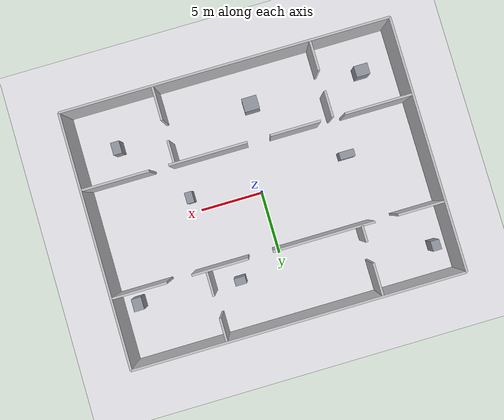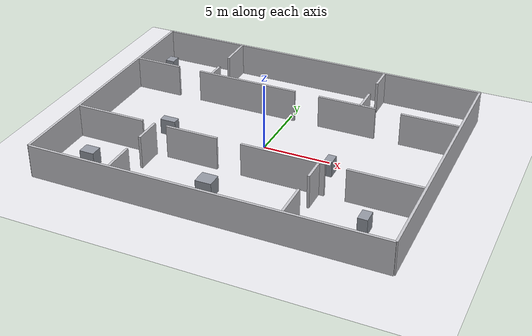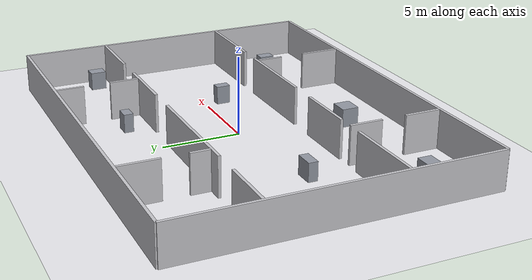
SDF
<?xml version="1.0"?>
<sdf version="1.9"><world name="new_room_world">
<plugin filename="gz-sim-physics-system" name="gz::sim::systems::Physics"/><plugin filename="gz-sim-user-commands-system" name="gz::sim::systems::UserCommands"/><plugin filename="gz-sim-scene-broadcaster-system" name="gz::sim::systems::SceneBroadcaster"/><plugin filename="gz-sim-sensors-system" name="gz::sim::systems::Sensors"><render_engine>ogre2</render_engine></plugin><plugin filename="gz-sim-imu-system" name="gz::sim::systems::Imu"/>
<physics name="new_room_realtime" type="ignored"><max_step_size>0.001</max_step_size><real_time_factor>1</real_time_factor></physics><gravity>0 0 -9.8</gravity><scene><ambient>0.85 0.85 0.87 1</ambient><background>0.68 0.68 0.71 1</background><shadows>false</shadows></scene><light name="sun" type="directional"><cast_shadows>false</cast_shadows><pose>0 0 10 0 0 0</pose><diffuse>0.95 0.95 0.95 1</diffuse><direction>-0.3 0.2 -1</direction></light>
<model name="new_room_ground"><static>true</static><link name="ground_link"><collision name="ground_collision"><geometry><plane><normal>0 0 1</normal><size>40 32</size></plane></geometry></collision><visual name="ground_visual"><geometry><plane><normal>0 0 1</normal><size>40 32</size></plane></geometry><material><ambient>0.92 0.92 0.94 1</ambient><diffuse>0.92 0.92 0.94 1</diffuse></material></visual></link></model>
<model name="mini_hospital_structure"><static>true</static><link name="structure">
<collision name="mx048_c000"><pose>0 10 1.25 0 0 0</pose><geometry><box><size>26 0.18 2.5</size></box></geometry></collision><visual name="mx048_v000"><pose>0 10 1.25 0 0 0</pose><geometry><box><size>26 0.18 2.5</size></box></geometry><material><ambient>0.78 0.78 0.80 1</ambient><diffuse>0.78 0.78 0.80 1</diffuse></material></visual>
<collision name="mx048_c001"><pose>0 -10 1.25 0 0 0</pose><geometry><box><size>26 0.18 2.5</size></box></geometry></collision><visual name="mx048_v001"><pose>0 -10 1.25 0 0 0</pose><geometry><box><size>26 0.18 2.5</size></box></geometry><material><ambient>0.78 0.78 0.80 1</ambient><diffuse>0.78 0.78 0.80 1</diffuse></material></visual>
<collision name="mx048_c002"><pose>-13 0 1.25 0 0 0</pose><geometry><box><size>0.18 20 2.5</size></box></geometry></collision><visual name="mx048_v002"><pose>-13 0 1.25 0 0 0</pose><geometry><box><size>0.18 20 2.5</size></box></geometry><material><ambient>0.78 0.78 0.80 1</ambient><diffuse>0.78 0.78 0.80 1</diffuse></material></visual>
<collision name="mx048_c003"><pose>13 0 1.25 0 0 0</pose><geometry><box><size>0.18 20 2.5</size></box></geometry></collision><visual name="mx048_v003"><pose>13 0 1.25 0 0 0</pose><geometry><box><size>0.18 20 2.5</size></box></geometry><material><ambient>0.78 0.78 0.80 1</ambient><diffuse>0.78 0.78 0.80 1</diffuse></material></visual>
<collision name="mx048_c004"><pose>-11.105 4.5 1.25 0 0 0</pose><geometry><box><size>3.61 0.18 2.5</size></box></geometry></collision><visual name="mx048_v004"><pose>-11.105 4.5 1.25 0 0 0</pose><geometry><box><size>3.61 0.18 2.5</size></box></geometry><material><ambient>0.78 0.78 0.80 1</ambient><diffuse>0.78 0.78 0.80 1</diffuse></material></visual>
<collision name="mx048_c005"><pose>-3.525 4.5 1.25 0 0 0</pose><geometry><box><size>7.95 0.18 2.5</size></box></geometry></collision><visual name="mx048_v005"><pose>-3.525 4.5 1.25 0 0 0</pose><geometry><box><size>7.95 0.18 2.5</size></box></geometry><material><ambient>0.78 0.78 0.80 1</ambient><diffuse>0.78 0.78 0.80 1</diffuse></material></visual>
<collision name="mx048_c006"><pose>4.55 4.5 1.25 0 0 0</pose><geometry><box><size>4.4 0.18 2.5</size></box></geometry></collision><visual name="mx048_v006"><pose>4.55 4.5 1.25 0 0 0</pose><geometry><box><size>4.4 0.18 2.5</size></box></geometry><material><ambient>0.78 0.78 0.80 1</ambient><diffuse>0.78 0.78 0.80 1</diffuse></material></visual>
<collision name="mx048_c007"><pose>10.78 4.5 1.25 0 0 0</pose><geometry><box><size>4.26 0.18 2.5</size></box></geometry></collision><visual name="mx048_v007"><pose>10.78 4.5 1.25 0 0 0</pose><geometry><box><size>4.26 0.18 2.5</size></box></geometry><material><ambient>0.78 0.78 0.80 1</ambient><diffuse>0.78 0.78 0.80 1</diffuse></material></visual>
<collision name="mx048_c008"><pose>-10.28 -3.9 1.25 0 0 0</pose><geometry><box><size>5.26 0.18 2.5</size></box></geometry></collision><visual name="mx048_v008"><pose>-10.28 -3.9 1.25 0 0 0</pose><geometry><box><size>5.26 0.18 2.5</size></box></geometry><material><ambient>0.78 0.78 0.80 1</ambient><diffuse>0.78 0.78 0.80 1</diffuse></material></visual>
<collision name="mx048_c009"><pose>-3.775 -3.9 1.25 0 0 0</pose><geometry><box><size>3.95 0.18 2.5</size></box></geometry></collision><visual name="mx048_v009"><pose>-3.775 -3.9 1.25 0 0 0</pose><geometry><box><size>3.95 0.18 2.5</size></box></geometry><material><ambient>0.78 0.78 0.80 1</ambient><diffuse>0.78 0.78 0.80 1</diffuse></material></visual>
<collision name="mx048_c010"><pose>3.075 -3.9 1.25 0 0 0</pose><geometry><box><size>6.15 0.18 2.5</size></box></geometry></collision><visual name="mx048_v010"><pose>3.075 -3.9 1.25 0 0 0</pose><geometry><box><size>6.15 0.18 2.5</size></box></geometry><material><ambient>0.78 0.78 0.80 1</ambient><diffuse>0.78 0.78 0.80 1</diffuse></material></visual>
<collision name="mx048_c011"><pose>10.28 -3.9 1.25 0 0 0</pose><geometry><box><size>5.26 0.18 2.5</size></box></geometry></collision><visual name="mx048_v011"><pose>10.28 -3.9 1.25 0 0 0</pose><geometry><box><size>5.26 0.18 2.5</size></box></geometry><material><ambient>0.78 0.78 0.80 1</ambient><diffuse>0.78 0.78 0.80 1</diffuse></material></visual>
<collision name="mx048_c012"><pose>-6.5 5.15 1.25 0 0 0</pose><geometry><box><size>0.18 1.3 2.5</size></box></geometry></collision><visual name="mx048_v012"><pose>-6.5 5.15 1.25 0 0 0</pose><geometry><box><size>0.18 1.3 2.5</size></box></geometry><material><ambient>0.78 0.78 0.80 1</ambient><diffuse>0.78 0.78 0.80 1</diffuse></material></visual>
<collision name="mx048_c013"><pose>-6.5 8.655 1.25 0 0 0</pose><geometry><box><size>0.18 2.51 2.5</size></box></geometry></collision><visual name="mx048_v013"><pose>-6.5 8.655 1.25 0 0 0</pose><geometry><box><size>0.18 2.51 2.5</size></box></geometry><material><ambient>0.78 0.78 0.80 1</ambient><diffuse>0.78 0.78 0.80 1</diffuse></material></visual>
<collision name="mx048_c014"><pose>5.6 5.475 1.25 0 0 0</pose><geometry><box><size>0.18 1.95 2.5</size></box></geometry></collision><visual name="mx048_v014"><pose>5.6 5.475 1.25 0 0 0</pose><geometry><box><size>0.18 1.95 2.5</size></box></geometry><material><ambient>0.78 0.78 0.80 1</ambient><diffuse>0.78 0.78 0.80 1</diffuse></material></visual>
<collision name="mx048_c015"><pose>5.6 9.03 1.25 0 0 0</pose><geometry><box><size>0.18 1.76 2.5</size></box></geometry></collision><visual name="mx048_v015"><pose>5.6 9.03 1.25 0 0 0</pose><geometry><box><size>0.18 1.76 2.5</size></box></geometry><material><ambient>0.78 0.78 0.80 1</ambient><diffuse>0.78 0.78 0.80 1</diffuse></material></visual>
<collision name="mx048_c016"><pose>-6.7 -8.755 1.25 0 0 0</pose><geometry><box><size>0.18 2.31 2.5</size></box></geometry></collision><visual name="mx048_v016"><pose>-6.7 -8.755 1.25 0 0 0</pose><geometry><box><size>0.18 2.31 2.5</size></box></geometry><material><ambient>0.78 0.78 0.80 1</ambient><diffuse>0.78 0.78 0.80 1</diffuse></material></visual>
<collision name="mx048_c017"><pose>-6.7 -4.95 1.25 0 0 0</pose><geometry><box><size>0.18 2.1 2.5</size></box></geometry></collision><visual name="mx048_v017"><pose>-6.7 -4.95 1.25 0 0 0</pose><geometry><box><size>0.18 2.1 2.5</size></box></geometry><material><ambient>0.78 0.78 0.80 1</ambient><diffuse>0.78 0.78 0.80 1</diffuse></material></visual>
<collision name="mx048_c018"><pose>5.7 -8.605 1.25 0 0 0</pose><geometry><box><size>0.18 2.61 2.5</size></box></geometry></collision><visual name="mx048_v018"><pose>5.7 -8.605 1.25 0 0 0</pose><geometry><box><size>0.18 2.61 2.5</size></box></geometry><material><ambient>0.78 0.78 0.80 1</ambient><diffuse>0.78 0.78 0.80 1</diffuse></material></visual>
<collision name="mx048_c019"><pose>5.7 -4.8 1.25 0 0 0</pose><geometry><box><size>0.18 1.8 2.5</size></box></geometry></collision><visual name="mx048_v019"><pose>5.7 -4.8 1.25 0 0 0</pose><geometry><box><size>0.18 1.8 2.5</size></box></geometry><material><ambient>0.78 0.78 0.80 1</ambient><diffuse>0.78 0.78 0.80 1</diffuse></material></visual>
<collision name="mx048_c020"><pose>-11.8 7.7 0.6 0 0 0</pose><geometry><box><size>0.7 0.8 1.2</size></box></geometry></collision><visual name="mx048_v020"><pose>-11.8 7.7 0.6 0 0 0</pose><geometry><box><size>0.7 0.8 1.2</size></box></geometry><material><ambient>0.58 0.60 0.64 1</ambient><diffuse>0.58 0.60 0.64 1</diffuse></material></visual>
<collision name="mx048_c021"><pose>3.5 6.1 0.6 0 0 0</pose><geometry><box><size>0.9 0.6 1.2</size></box></geometry></collision><visual name="mx048_v021"><pose>3.5 6.1 0.6 0 0 0</pose><geometry><box><size>0.9 0.6 1.2</size></box></geometry><material><ambient>0.58 0.60 0.64 1</ambient><diffuse>0.58 0.60 0.64 1</diffuse></material></visual>
<collision name="mx048_c022"><pose>11.6 5.6 0.6 0 0 0</pose><geometry><box><size>0.8 1 1.2</size></box></geometry></collision><visual name="mx048_v022"><pose>11.6 5.6 0.6 0 0 0</pose><geometry><box><size>0.8 1 1.2</size></box></geometry><material><ambient>0.58 0.60 0.64 1</ambient><diffuse>0.58 0.60 0.64 1</diffuse></material></visual>
<collision name="mx048_c023"><pose>-10.2 -7 0.6 0 0 0</pose><geometry><box><size>1.1 0.9 1.2</size></box></geometry></collision><visual name="mx048_v023"><pose>-10.2 -7 0.6 0 0 0</pose><geometry><box><size>1.1 0.9 1.2</size></box></geometry><material><ambient>0.58 0.60 0.64 1</ambient><diffuse>0.58 0.60 0.64 1</diffuse></material></visual>
<collision name="mx048_c024"><pose>-1.1 -6.9 0.6 0 0 0</pose><geometry><box><size>1.2 1.1 1.2</size></box></geometry></collision><visual name="mx048_v024"><pose>-1.1 -6.9 0.6 0 0 0</pose><geometry><box><size>1.2 1.1 1.2</size></box></geometry><material><ambient>0.58 0.60 0.64 1</ambient><diffuse>0.58 0.60 0.64 1</diffuse></material></visual>
<collision name="mx048_c025"><pose>9.9 -6.5 0.6 0 0 0</pose><geometry><box><size>0.7 1 1.2</size></box></geometry></collision><visual name="mx048_v025"><pose>9.9 -6.5 0.6 0 0 0</pose><geometry><box><size>0.7 1 1.2</size></box></geometry><material><ambient>0.58 0.60 0.64 1</ambient><diffuse>0.58 0.60 0.64 1</diffuse></material></visual>
<collision name="mx048_c026"><pose>-7.2 -1 0.6 0 0 0</pose><geometry><box><size>1.2 0.6 1.2</size></box></geometry></collision><visual name="mx048_v026"><pose>-7.2 -1 0.6 0 0 0</pose><geometry><box><size>1.2 0.6 1.2</size></box></geometry><material><ambient>0.58 0.60 0.64 1</ambient><diffuse>0.58 0.60 0.64 1</diffuse></material></visual>
<collision name="mx048_c027"><pose>5.5 -1.2 0.6 0 0 0</pose><geometry><box><size>0.6 0.9 1.2</size></box></geometry></collision><visual name="mx048_v027"><pose>5.5 -1.2 0.6 0 0 0</pose><geometry><box><size>0.6 0.9 1.2</size></box></geometry><material><ambient>0.58 0.60 0.64 1</ambient><diffuse>0.58 0.60 0.64 1</diffuse></material></visual>
</link></model></world></sdf>
